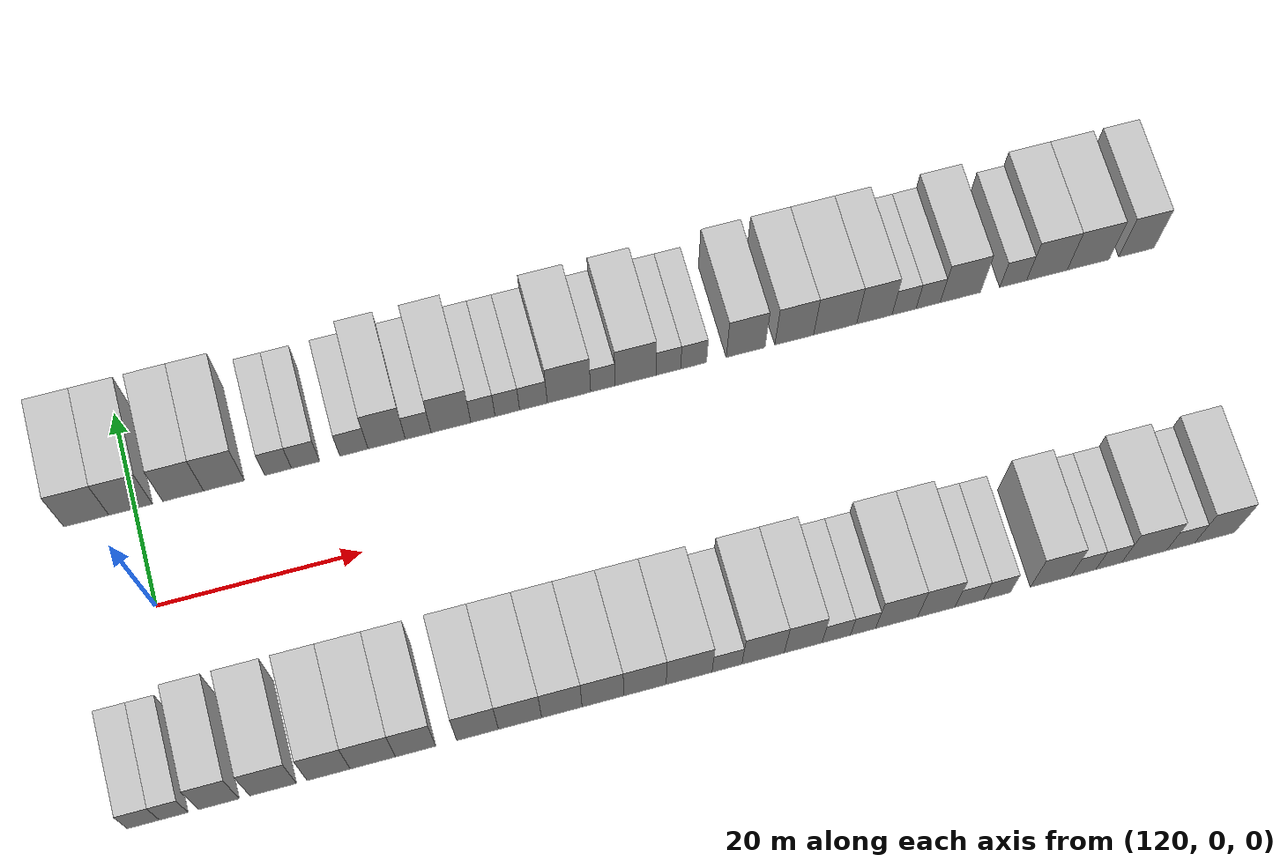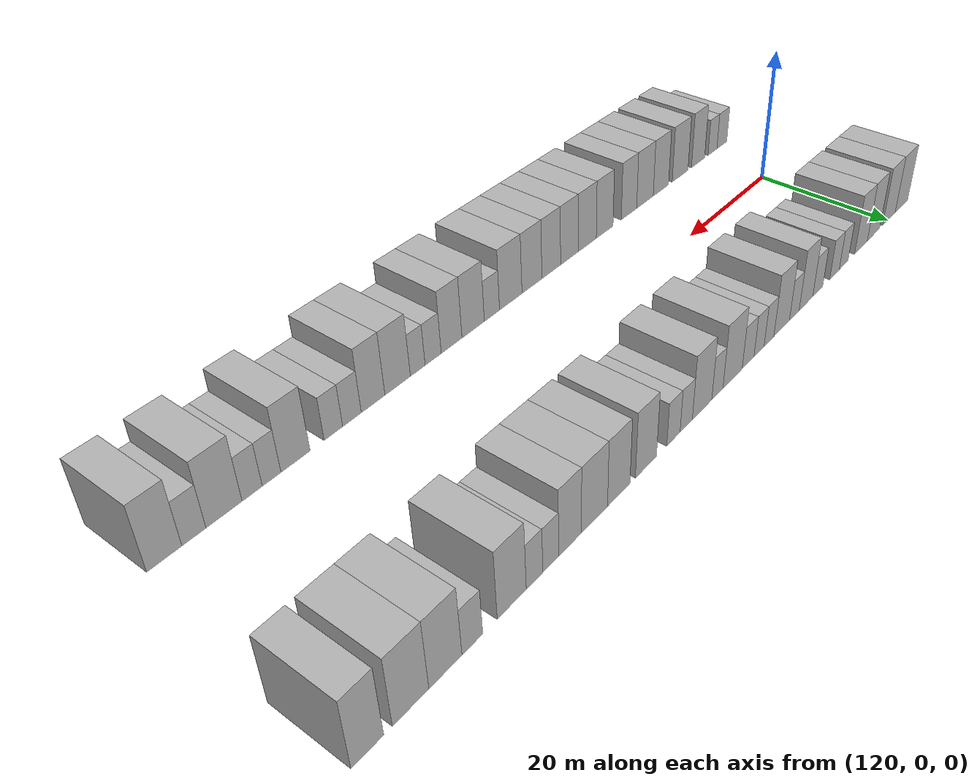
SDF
<sdf version="1.6">
 <world name="default">
  <model name="building_29">
   <static>1</static>
   <pose>115.2992 15.0000 0 0.000000 0.000000 1.570796</pose>
   <link name="link">
    <pose>0 0 4.50 0 0 0</pose>
    <collision name="collision"><geometry><box><size>10.0000 4.3955 9.0000</size></box></geometry></collision>
    <visual name="visual">
     <cast_shadows>0</cast_shadows>
     <geometry><box><size>10.0000 4.3955 9.0000</size></box></geometry>
     <material>
      <script>
       <uri>model://HANNAS_wall/materials/scripts</uri>
       <uri>model://HANNAS_wall/materials/textures</uri>
       <name>vrc/HANNAS_wall</name>
      </script>
     </material>
    </visual>
   </link>
  </model>
  <model name="building_30">
   <static>1</static>
   <pose>119.6165 15.0000 0 0.000000 0.000000 1.570796</pose>
   <link name="link">
    <pose>0 0 4.50 0 0 0</pose>
    <collision name="collision"><geometry><box><size>10.0000 4.2392 9.0000</size></box></geometry></collision>
    <visual name="visual">
     <cast_shadows>0</cast_shadows>
     <geometry><box><size>10.0000 4.2392 9.0000</size></box></geometry>
     <material>
      <script>
       <uri>model://HANNAS_wall/materials/scripts</uri>
       <uri>model://HANNAS_wall/materials/textures</uri>
       <name>vrc/HANNAS_wall</name>
      </script>
     </material>
    </visual>
   </link>
  </model>
  <model name="building_31">
   <static>1</static>
   <pose>124.7347 15.0000 0 0.000000 0.000000 1.570796</pose>
   <link name="link">
    <pose>0 0 4.50 0 0 0</pose>
    <collision name="collision"><geometry><box><size>10.0000 3.9970 9.0000</size></box></geometry></collision>
    <visual name="visual">
     <cast_shadows>0</cast_shadows>
     <geometry><box><size>10.0000 3.9970 9.0000</size></box></geometry>
     <material>
      <script>
       <uri>model://HANNAS_wall/materials/scripts</uri>
       <uri>model://HANNAS_wall/materials/textures</uri>
       <name>vrc/HANNAS_wall</name>
      </script>
     </material>
    </visual>
   </link>
  </model>
  <model name="building_32">
   <static>1</static>
   <pose>128.7281 15.0000 0 0.000000 0.000000 1.570796</pose>
   <link name="link">
    <pose>0 0 4.50 0 0 0</pose>
    <collision name="collision"><geometry><box><size>10.0000 3.9899 9.0000</size></box></geometry></collision>
    <visual name="visual">
     <cast_shadows>0</cast_shadows>
     <geometry><box><size>10.0000 3.9899 9.0000</size></box></geometry>
     <material>
      <script>
       <uri>model://HANNAS_wall/materials/scripts</uri>
       <uri>model://HANNAS_wall/materials/textures</uri>
       <name>vrc/HANNAS_wall</name>
      </script>
     </material>
    </visual>
   </link>
  </model>
  <model name="building_33">
   <static>1</static>
   <pose>134.0501 15.0000 0 0.000000 0.000000 1.570796</pose>
   <link name="link">
    <pose>0 0 3.00 0 0 0</pose>
    <collision name="collision"><geometry><box><size>10.0000 2.6541 6.0000</size></box></geometry></collision>
    <visual name="visual">
     <cast_shadows>0</cast_shadows>
     <geometry><box><size>10.0000 2.6541 6.0000</size></box></geometry>
     <material>
      <script>
       <uri>model://HANNAS_wall/materials/scripts</uri>
       <uri>model://HANNAS_wall/materials/textures</uri>
       <name>vrc/HANNAS_wall</name>
      </script>
     </material>
    </visual>
   </link>
  </model>
  <model name="building_34">
   <static>1</static>
   <pose>136.7619 15.0000 0 0.000000 0.000000 1.570796</pose>
   <link name="link">
    <pose>0 0 3.00 0 0 0</pose>
    <collision name="collision"><geometry><box><size>10.0000 2.7695 6.0000</size></box></geometry></collision>
    <visual name="visual">
     <cast_shadows>0</cast_shadows>
     <geometry><box><size>10.0000 2.7695 6.0000</size></box></geometry>
     <material>
      <script>
       <uri>model://HANNAS_wall/materials/scripts</uri>
       <uri>model://HANNAS_wall/materials/textures</uri>
       <name>vrc/HANNAS_wall</name>
      </script>
     </material>
    </visual>
   </link>
  </model>
  <model name="building_35">
   <static>1</static>
   <pose>141.5453 15.0000 0 0.000000 0.000000 1.570796</pose>
   <link name="link">
    <pose>0 0 3.00 0 0 0</pose>
    <collision name="collision"><geometry><box><size>10.0000 2.7974 6.0000</size></box></geometry></collision>
    <visual name="visual">
     <cast_shadows>0</cast_shadows>
     <geometry><box><size>10.0000 2.7974 6.0000</size></box></geometry>
     <material>
      <script>
       <uri>model://HANNAS_wall/materials/scripts</uri>
       <uri>model://HANNAS_wall/materials/textures</uri>
       <name>vrc/HANNAS_wall</name>
      </script>
     </material>
    </visual>
   </link>
  </model>
  <model name="building_36">
   <static>1</static>
   <pose>144.7961 15.0000 0 0.000000 0.000000 1.570796</pose>
   <link name="link">
    <pose>0 0 4.50 0 0 0</pose>
    <collision name="collision"><geometry><box><size>10.0000 3.7042 9.0000</size></box></geometry></collision>
    <visual name="visual">
     <cast_shadows>0</cast_shadows>
     <geometry><box><size>10.0000 3.7042 9.0000</size></box></geometry>
     <material>
      <script>
       <uri>model://HANNAS_wall/materials/scripts</uri>
       <uri>model://HANNAS_wall/materials/textures</uri>
       <name>vrc/HANNAS_wall</name>
      </script>
     </material>
    </visual>
   </link>
  </model>
  <model name="building_37">
   <static>1</static>
   <pose>147.9257 15.0000 0 0.000000 0.000000 1.570796</pose>
   <link name="link">
    <pose>0 0 3.00 0 0 0</pose>
    <collision name="collision"><geometry><box><size>10.0000 2.5549 6.0000</size></box></geometry></collision>
    <visual name="visual">
     <cast_shadows>0</cast_shadows>
     <geometry><box><size>10.0000 2.5549 6.0000</size></box></geometry>
     <material>
      <script>
       <uri>model://HANNAS_wall/materials/scripts</uri>
       <uri>model://HANNAS_wall/materials/textures</uri>
       <name>vrc/HANNAS_wall</name>
      </script>
     </material>
    </visual>
   </link>
  </model>
  <model name="building_38">
   <static>1</static>
   <pose>151.1870 15.0000 0 0.000000 0.000000 1.570796</pose>
   <link name="link">
    <pose>0 0 4.50 0 0 0</pose>
    <collision name="collision"><geometry><box><size>10.0000 3.9676 9.0000</size></box></geometry></collision>
    <visual name="visual">
     <cast_shadows>0</cast_shadows>
     <geometry><box><size>10.0000 3.9676 9.0000</size></box></geometry>
     <material>
      <script>
       <uri>model://HANNAS_wall/materials/scripts</uri>
       <uri>model://HANNAS_wall/materials/textures</uri>
       <name>vrc/HANNAS_wall</name>
      </script>
     </material>
    </visual>
   </link>
  </model>
  <model name="building_39">
   <static>1</static>
   <pose>154.3847 15.0000 0 0.000000 0.000000 1.570796</pose>
   <link name="link">
    <pose>0 0 3.00 0 0 0</pose>
    <collision name="collision"><geometry><box><size>10.0000 2.4278 6.0000</size></box></geometry></collision>
    <visual name="visual">
     <cast_shadows>0</cast_shadows>
     <geometry><box><size>10.0000 2.4278 6.0000</size></box></geometry>
     <material>
      <script>
       <uri>model://HANNAS_wall/materials/scripts</uri>
       <uri>model://HANNAS_wall/materials/textures</uri>
       <name>vrc/HANNAS_wall</name>
      </script>
     </material>
    </visual>
   </link>
  </model>
  <model name="building_40">
   <static>1</static>
   <pose>156.8276 15.0000 0 0.000000 0.000000 1.570796</pose>
   <link name="link">
    <pose>0 0 3.00 0 0 0</pose>
    <collision name="collision"><geometry><box><size>10.0000 2.4580 6.0000</size></box></geometry></collision>
    <visual name="visual">
     <cast_shadows>0</cast_shadows>
     <geometry><box><size>10.0000 2.4580 6.0000</size></box></geometry>
     <material>
      <script>
       <uri>model://HANNAS_wall/materials/scripts</uri>
       <uri>model://HANNAS_wall/materials/textures</uri>
       <name>vrc/HANNAS_wall</name>
      </script>
     </material>
    </visual>
   </link>
  </model>
  <model name="building_41">
   <static>1</static>
   <pose>159.4426 15.0000 0 0.000000 0.000000 1.570796</pose>
   <link name="link">
    <pose>0 0 3.00 0 0 0</pose>
    <collision name="collision"><geometry><box><size>10.0000 2.7721 6.0000</size></box></geometry></collision>
    <visual name="visual">
     <cast_shadows>0</cast_shadows>
     <geometry><box><size>10.0000 2.7721 6.0000</size></box></geometry>
     <material>
      <script>
       <uri>model://HANNAS_wall/materials/scripts</uri>
       <uri>model://HANNAS_wall/materials/textures</uri>
       <name>vrc/HANNAS_wall</name>
      </script>
     </material>
    </visual>
   </link>
  </model>
  <model name="building_42">
   <static>1</static>
   <pose>163.0122 15.0000 0 0.000000 0.000000 1.570796</pose>
   <link name="link">
    <pose>0 0 4.50 0 0 0</pose>
    <collision name="collision"><geometry><box><size>10.0000 4.3670 9.0000</size></box></geometry></collision>
    <visual name="visual">
     <cast_shadows>0</cast_shadows>
     <geometry><box><size>10.0000 4.3670 9.0000</size></box></geometry>
     <material>
      <script>
       <uri>model://HANNAS_wall/materials/scripts</uri>
       <uri>model://HANNAS_wall/materials/textures</uri>
       <name>vrc/HANNAS_wall</name>
      </script>
     </material>
    </visual>
   </link>
  </model>
  <model name="building_43">
   <static>1</static>
   <pose>166.4237 15.0000 0 0.000000 0.000000 1.570796</pose>
   <link name="link">
    <pose>0 0 3.00 0 0 0</pose>
    <collision name="collision"><geometry><box><size>10.0000 2.4562 6.0000</size></box></geometry></collision>
    <visual name="visual">
     <cast_shadows>0</cast_shadows>
     <geometry><box><size>10.0000 2.4562 6.0000</size></box></geometry>
     <material>
      <script>
       <uri>model://HANNAS_wall/materials/scripts</uri>
       <uri>model://HANNAS_wall/materials/textures</uri>
       <name>vrc/HANNAS_wall</name>
      </script>
     </material>
    </visual>
   </link>
  </model>
  <model name="building_44">
   <static>1</static>
   <pose>169.7165 15.0000 0 0.000000 0.000000 1.570796</pose>
   <link name="link">
    <pose>0 0 4.50 0 0 0</pose>
    <collision name="collision"><geometry><box><size>10.0000 4.1293 9.0000</size></box></geometry></collision>
    <visual name="visual">
     <cast_shadows>0</cast_shadows>
     <geometry><box><size>10.0000 4.1293 9.0000</size></box></geometry>
     <material>
      <script>
       <uri>model://HANNAS_wall/materials/scripts</uri>
       <uri>model://HANNAS_wall/materials/textures</uri>
       <name>vrc/HANNAS_wall</name>
      </script>
     </material>
    </visual>
   </link>
  </model>
  <model name="building_45">
   <static>1</static>
   <pose>173.0395 15.0000 0 0.000000 0.000000 1.570796</pose>
   <link name="link">
    <pose>0 0 3.00 0 0 0</pose>
    <collision name="collision"><geometry><box><size>10.0000 2.5167 6.0000</size></box></geometry></collision>
    <visual name="visual">
     <cast_shadows>0</cast_shadows>
     <geometry><box><size>10.0000 2.5167 6.0000</size></box></geometry>
     <material>
      <script>
       <uri>model://HANNAS_wall/materials/scripts</uri>
       <uri>model://HANNAS_wall/materials/textures</uri>
       <name>vrc/HANNAS_wall</name>
      </script>
     </material>
    </visual>
   </link>
  </model>
  <model name="building_46">
   <static>1</static>
   <pose>175.6132 15.0000 0 0.000000 0.000000 1.570796</pose>
   <link name="link">
    <pose>0 0 3.00 0 0 0</pose>
    <collision name="collision"><geometry><box><size>10.0000 2.6307 6.0000</size></box></geometry></collision>
    <visual name="visual">
     <cast_shadows>0</cast_shadows>
     <geometry><box><size>10.0000 2.6307 6.0000</size></box></geometry>
     <material>
      <script>
       <uri>model://HANNAS_wall/materials/scripts</uri>
       <uri>model://HANNAS_wall/materials/textures</uri>
       <name>vrc/HANNAS_wall</name>
      </script>
     </material>
    </visual>
   </link>
  </model>
  <model name="building_47">
   <static>1</static>
   <pose>180.9091 15.0000 0 0.000000 0.000000 1.570796</pose>
   <link name="link">
    <pose>0 0 4.50 0 0 0</pose>
    <collision name="collision"><geometry><box><size>10.0000 3.9610 9.0000</size></box></geometry></collision>
    <visual name="visual">
     <cast_shadows>0</cast_shadows>
     <geometry><box><size>10.0000 3.9610 9.0000</size></box></geometry>
     <material>
      <script>
       <uri>model://HANNAS_wall/materials/scripts</uri>
       <uri>model://HANNAS_wall/materials/textures</uri>
       <name>vrc/HANNAS_wall</name>
      </script>
     </material>
    </visual>
   </link>
  </model>
  <model name="building_48">
   <static>1</static>
   <pose>185.8766 15.0000 0 0.000000 0.000000 1.570796</pose>
   <link name="link">
    <pose>0 0 4.50 0 0 0</pose>
    <collision name="collision"><geometry><box><size>10.0000 3.9740 9.0000</size></box></geometry></collision>
    <visual name="visual">
     <cast_shadows>0</cast_shadows>
     <geometry><box><size>10.0000 3.9740 9.0000</size></box></geometry>
     <material>
      <script>
       <uri>model://HANNAS_wall/materials/scripts</uri>
       <uri>model://HANNAS_wall/materials/textures</uri>
       <name>vrc/HANNAS_wall</name>
      </script>
     </material>
    </visual>
   </link>
  </model>
  <model name="building_49">
   <static>1</static>
   <pose>190.0757 15.0000 0 0.000000 0.000000 1.570796</pose>
   <link name="link">
    <pose>0 0 4.50 0 0 0</pose>
    <collision name="collision"><geometry><box><size>10.0000 4.4241 9.0000</size></box></geometry></collision>
    <visual name="visual">
     <cast_shadows>0</cast_shadows>
     <geometry><box><size>10.0000 4.4241 9.0000</size></box></geometry>
     <material>
      <script>
       <uri>model://HANNAS_wall/materials/scripts</uri>
       <uri>model://HANNAS_wall/materials/textures</uri>
       <name>vrc/HANNAS_wall</name>
      </script>
     </material>
    </visual>
   </link>
  </model>
  <model name="building_50">
   <static>1</static>
   <pose>194.1069 15.0000 0 0.000000 0.000000 1.570796</pose>
   <link name="link">
    <pose>0 0 4.50 0 0 0</pose>
    <collision name="collision"><geometry><box><size>10.0000 3.6383 9.0000</size></box></geometry></collision>
    <visual name="visual">
     <cast_shadows>0</cast_shadows>
     <geometry><box><size>10.0000 3.6383 9.0000</size></box></geometry>
     <material>
      <script>
       <uri>model://HANNAS_wall/materials/scripts</uri>
       <uri>model://HANNAS_wall/materials/textures</uri>
       <name>vrc/HANNAS_wall</name>
      </script>
     </material>
    </visual>
   </link>
  </model>
  <model name="building_51">
   <static>1</static>
   <pose>197.1654 15.0000 0 0.000000 0.000000 1.570796</pose>
   <link name="link">
    <pose>0 0 3.00 0 0 0</pose>
    <collision name="collision"><geometry><box><size>10.0000 2.4788 6.0000</size></box></geometry></collision>
    <visual name="visual">
     <cast_shadows>0</cast_shadows>
     <geometry><box><size>10.0000 2.4788 6.0000</size></box></geometry>
     <material>
      <script>
       <uri>model://HANNAS_wall/materials/scripts</uri>
       <uri>model://HANNAS_wall/materials/textures</uri>
       <name>vrc/HANNAS_wall</name>
      </script>
     </material>
    </visual>
   </link>
  </model>
  <model name="building_52">
   <static>1</static>
   <pose>199.6519 15.0000 0 0.000000 0.000000 1.570796</pose>
   <link name="link">
    <pose>0 0 3.00 0 0 0</pose>
    <collision name="collision"><geometry><box><size>10.0000 2.4940 6.0000</size></box></geometry></collision>
    <visual name="visual">
     <cast_shadows>0</cast_shadows>
     <geometry><box><size>10.0000 2.4940 6.0000</size></box></geometry>
     <material>
      <script>
       <uri>model://HANNAS_wall/materials/scripts</uri>
       <uri>model://HANNAS_wall/materials/textures</uri>
       <name>vrc/HANNAS_wall</name>
      </script>
     </material>
    </visual>
   </link>
  </model>
  <model name="building_53">
   <static>1</static>
   <pose>202.9938 15.0000 0 0.000000 0.000000 1.570796</pose>
   <link name="link">
    <pose>0 0 4.50 0 0 0</pose>
    <collision name="collision"><geometry><box><size>10.0000 4.1898 9.0000</size></box></geometry></collision>
    <visual name="visual">
     <cast_shadows>0</cast_shadows>
     <geometry><box><size>10.0000 4.1898 9.0000</size></box></geometry>
     <material>
      <script>
       <uri>model://HANNAS_wall/materials/scripts</uri>
       <uri>model://HANNAS_wall/materials/textures</uri>
       <name>vrc/HANNAS_wall</name>
      </script>
     </material>
    </visual>
   </link>
  </model>
  <model name="building_54">
   <static>1</static>
   <pose>208.4833 15.0000 0 0.000000 0.000000 1.570796</pose>
   <link name="link">
    <pose>0 0 3.00 0 0 0</pose>
    <collision name="collision"><geometry><box><size>10.0000 2.7892 6.0000</size></box></geometry></collision>
    <visual name="visual">
     <cast_shadows>0</cast_shadows>
     <geometry><box><size>10.0000 2.7892 6.0000</size></box></geometry>
     <material>
      <script>
       <uri>model://HANNAS_wall/materials/scripts</uri>
       <uri>model://HANNAS_wall/materials/textures</uri>
       <name>vrc/HANNAS_wall</name>
      </script>
     </material>
    </visual>
   </link>
  </model>
  <model name="building_55">
   <static>1</static>
   <pose>212.0010 15.0000 0 0.000000 0.000000 1.570796</pose>
   <link name="link">
    <pose>0 0 4.50 0 0 0</pose>
    <collision name="collision"><geometry><box><size>10.0000 4.2462 9.0000</size></box></geometry></collision>
    <visual name="visual">
     <cast_shadows>0</cast_shadows>
     <geometry><box><size>10.0000 4.2462 9.0000</size></box></geometry>
     <material>
      <script>
       <uri>model://HANNAS_wall/materials/scripts</uri>
       <uri>model://HANNAS_wall/materials/textures</uri>
       <name>vrc/HANNAS_wall</name>
      </script>
     </material>
    </visual>
   </link>
  </model>
  <model name="building_56">
   <static>1</static>
   <pose>216.3289 15.0000 0 0.000000 0.000000 1.570796</pose>
   <link name="link">
    <pose>0 0 4.50 0 0 0</pose>
    <collision name="collision"><geometry><box><size>10.0000 4.4097 9.0000</size></box></geometry></collision>
    <visual name="visual">
     <cast_shadows>0</cast_shadows>
     <geometry><box><size>10.0000 4.4097 9.0000</size></box></geometry>
     <material>
      <script>
       <uri>model://HANNAS_wall/materials/scripts</uri>
       <uri>model://HANNAS_wall/materials/textures</uri>
       <name>vrc/HANNAS_wall</name>
      </script>
     </material>
    </visual>
   </link>
  </model>
  <model name="building_57">
   <static>1</static>
   <pose>221.3847 15.0000 0 0.000000 0.000000 1.570796</pose>
   <link name="link">
    <pose>0 0 4.50 0 0 0</pose>
    <collision name="collision"><geometry><box><size>10.0000 3.7019 9.0000</size></box></geometry></collision>
    <visual name="visual">
     <cast_shadows>0</cast_shadows>
     <geometry><box><size>10.0000 3.7019 9.0000</size></box></geometry>
     <material>
      <script>
       <uri>model://HANNAS_wall/materials/scripts</uri>
       <uri>model://HANNAS_wall/materials/textures</uri>
       <name>vrc/HANNAS_wall</name>
      </script>
     </material>
    </visual>
   </link>
  </model>
  <model name="building_86">
   <static>1</static>
   <pose>114.8021 -15.0000 0 0.000000 0.000000 1.570796</pose>
   <link name="link">
    <pose>0 0 3.00 0 0 0</pose>
    <collision name="collision"><geometry><box><size>10.0000 2.9981 6.0000</size></box></geometry></collision>
    <visual name="visual">
     <cast_shadows>0</cast_shadows>
     <geometry><box><size>10.0000 2.9981 6.0000</size></box></geometry>
     <material>
      <script>
       <uri>model://HANNAS_wall/materials/scripts</uri>
       <uri>model://HANNAS_wall/materials/textures</uri>
       <name>vrc/HANNAS_wall</name>
      </script>
     </material>
    </visual>
   </link>
  </model>
  <model name="building_87">
   <static>1</static>
   <pose>117.6377 -15.0000 0 0.000000 0.000000 1.570796</pose>
   <link name="link">
    <pose>0 0 3.00 0 0 0</pose>
    <collision name="collision"><geometry><box><size>10.0000 2.6730 6.0000</size></box></geometry></collision>
    <visual name="visual">
     <cast_shadows>0</cast_shadows>
     <geometry><box><size>10.0000 2.6730 6.0000</size></box></geometry>
     <material>
      <script>
       <uri>model://HANNAS_wall/materials/scripts</uri>
       <uri>model://HANNAS_wall/materials/textures</uri>
       <name>vrc/HANNAS_wall</name>
      </script>
     </material>
    </visual>
   </link>
  </model>
  <model name="building_88">
   <static>1</static>
   <pose>121.8744 -15.0000 0 0.000000 0.000000 1.570796</pose>
   <link name="link">
    <pose>0 0 4.50 0 0 0</pose>
    <collision name="collision"><geometry><box><size>10.0000 3.8004 9.0000</size></box></geometry></collision>
    <visual name="visual">
     <cast_shadows>0</cast_shadows>
     <geometry><box><size>10.0000 3.8004 9.0000</size></box></geometry>
     <material>
      <script>
       <uri>model://HANNAS_wall/materials/scripts</uri>
       <uri>model://HANNAS_wall/materials/textures</uri>
       <name>vrc/HANNAS_wall</name>
      </script>
     </material>
    </visual>
   </link>
  </model>
  <model name="building_89">
   <static>1</static>
   <pose>126.9673 -15.0000 0 0.000000 0.000000 1.570796</pose>
   <link name="link">
    <pose>0 0 4.50 0 0 0</pose>
    <collision name="collision"><geometry><box><size>10.0000 4.3854 9.0000</size></box></geometry></collision>
    <visual name="visual">
     <cast_shadows>0</cast_shadows>
     <geometry><box><size>10.0000 4.3854 9.0000</size></box></geometry>
     <material>
      <script>
       <uri>model://HANNAS_wall/materials/scripts</uri>
       <uri>model://HANNAS_wall/materials/textures</uri>
       <name>vrc/HANNAS_wall</name>
      </script>
     </material>
    </visual>
   </link>
  </model>
  <model name="building_90">
   <static>1</static>
   <pose>132.2022 -15.0000 0 0.000000 0.000000 1.570796</pose>
   <link name="link">
    <pose>0 0 4.50 0 0 0</pose>
    <collision name="collision"><geometry><box><size>10.0000 4.0846 9.0000</size></box></geometry></collision>
    <visual name="visual">
     <cast_shadows>0</cast_shadows>
     <geometry><box><size>10.0000 4.0846 9.0000</size></box></geometry>
     <material>
      <script>
       <uri>model://HANNAS_wall/materials/scripts</uri>
       <uri>model://HANNAS_wall/materials/textures</uri>
       <name>vrc/HANNAS_wall</name>
      </script>
     </material>
    </visual>
   </link>
  </model>
  <model name="building_91">
   <static>1</static>
   <pose>136.3926 -15.0000 0 0.000000 0.000000 1.570796</pose>
   <link name="link">
    <pose>0 0 4.50 0 0 0</pose>
    <collision name="collision"><geometry><box><size>10.0000 4.2962 9.0000</size></box></geometry></collision>
    <visual name="visual">
     <cast_shadows>0</cast_shadows>
     <geometry><box><size>10.0000 4.2962 9.0000</size></box></geometry>
     <material>
      <script>
       <uri>model://HANNAS_wall/materials/scripts</uri>
       <uri>model://HANNAS_wall/materials/textures</uri>
       <name>vrc/HANNAS_wall</name>
      </script>
     </material>
    </visual>
   </link>
  </model>
  <model name="building_92">
   <static>1</static>
   <pose>140.4512 -15.0000 0 0.000000 0.000000 1.570796</pose>
   <link name="link">
    <pose>0 0 4.50 0 0 0</pose>
    <collision name="collision"><geometry><box><size>10.0000 3.8211 9.0000</size></box></geometry></collision>
    <visual name="visual">
     <cast_shadows>0</cast_shadows>
     <geometry><box><size>10.0000 3.8211 9.0000</size></box></geometry>
     <material>
      <script>
       <uri>model://HANNAS_wall/materials/scripts</uri>
       <uri>model://HANNAS_wall/materials/textures</uri>
       <name>vrc/HANNAS_wall</name>
      </script>
     </material>
    </visual>
   </link>
  </model>
  <model name="building_93">
   <static>1</static>
   <pose>146.3554 -15.0000 0 0.000000 0.000000 1.570796</pose>
   <link name="link">
    <pose>0 0 4.50 0 0 0</pose>
    <collision name="collision"><geometry><box><size>10.0000 3.9873 9.0000</size></box></geometry></collision>
    <visual name="visual">
     <cast_shadows>0</cast_shadows>
     <geometry><box><size>10.0000 3.9873 9.0000</size></box></geometry>
     <material>
      <script>
       <uri>model://HANNAS_wall/materials/scripts</uri>
       <uri>model://HANNAS_wall/materials/textures</uri>
       <name>vrc/HANNAS_wall</name>
      </script>
     </material>
    </visual>
   </link>
  </model>
  <model name="building_94">
   <static>1</static>
   <pose>150.4192 -15.0000 0 0.000000 0.000000 1.570796</pose>
   <link name="link">
    <pose>0 0 4.50 0 0 0</pose>
    <collision name="collision"><geometry><box><size>10.0000 4.1402 9.0000</size></box></geometry></collision>
    <visual name="visual">
     <cast_shadows>0</cast_shadows>
     <geometry><box><size>10.0000 4.1402 9.0000</size></box></geometry>
     <material>
      <script>
       <uri>model://HANNAS_wall/materials/scripts</uri>
       <uri>model://HANNAS_wall/materials/textures</uri>
       <name>vrc/HANNAS_wall</name>
      </script>
     </material>
    </visual>
   </link>
  </model>
  <model name="building_95">
   <static>1</static>
   <pose>154.4359 -15.0000 0 0.000000 0.000000 1.570796</pose>
   <link name="link">
    <pose>0 0 4.50 0 0 0</pose>
    <collision name="collision"><geometry><box><size>10.0000 3.8934 9.0000</size></box></geometry></collision>
    <visual name="visual">
     <cast_shadows>0</cast_shadows>
     <geometry><box><size>10.0000 3.8934 9.0000</size></box></geometry>
     <material>
      <script>
       <uri>model://HANNAS_wall/materials/scripts</uri>
       <uri>model://HANNAS_wall/materials/textures</uri>
       <name>vrc/HANNAS_wall</name>
      </script>
     </material>
    </visual>
   </link>
  </model>
  <model name="building_96">
   <static>1</static>
   <pose>158.3820 -15.0000 0 0.000000 0.000000 1.570796</pose>
   <link name="link">
    <pose>0 0 4.50 0 0 0</pose>
    <collision name="collision"><geometry><box><size>10.0000 3.9987 9.0000</size></box></geometry></collision>
    <visual name="visual">
     <cast_shadows>0</cast_shadows>
     <geometry><box><size>10.0000 3.9987 9.0000</size></box></geometry>
     <material>
      <script>
       <uri>model://HANNAS_wall/materials/scripts</uri>
       <uri>model://HANNAS_wall/materials/textures</uri>
       <name>vrc/HANNAS_wall</name>
      </script>
     </material>
    </visual>
   </link>
  </model>
  <model name="building_97">
   <static>1</static>
   <pose>162.4344 -15.0000 0 0.000000 0.000000 1.570796</pose>
   <link name="link">
    <pose>0 0 4.50 0 0 0</pose>
    <collision name="collision"><geometry><box><size>10.0000 4.1061 9.0000</size></box></geometry></collision>
    <visual name="visual">
     <cast_shadows>0</cast_shadows>
     <geometry><box><size>10.0000 4.1061 9.0000</size></box></geometry>
     <material>
      <script>
       <uri>model://HANNAS_wall/materials/scripts</uri>
       <uri>model://HANNAS_wall/materials/textures</uri>
       <name>vrc/HANNAS_wall</name>
      </script>
     </material>
    </visual>
   </link>
  </model>
  <model name="building_98">
   <static>1</static>
   <pose>166.7149 -15.0000 0 0.000000 0.000000 1.570796</pose>
   <link name="link">
    <pose>0 0 4.50 0 0 0</pose>
    <collision name="collision"><geometry><box><size>10.0000 4.4549 9.0000</size></box></geometry></collision>
    <visual name="visual">
     <cast_shadows>0</cast_shadows>
     <geometry><box><size>10.0000 4.4549 9.0000</size></box></geometry>
     <material>
      <script>
       <uri>model://HANNAS_wall/materials/scripts</uri>
       <uri>model://HANNAS_wall/materials/textures</uri>
       <name>vrc/HANNAS_wall</name>
      </script>
     </material>
    </visual>
   </link>
  </model>
  <model name="building_99">
   <static>1</static>
   <pose>170.3978 -15.0000 0 0.000000 0.000000 1.570796</pose>
   <link name="link">
    <pose>0 0 3.00 0 0 0</pose>
    <collision name="collision"><geometry><box><size>10.0000 2.9109 6.0000</size></box></geometry></collision>
    <visual name="visual">
     <cast_shadows>0</cast_shadows>
     <geometry><box><size>10.0000 2.9109 6.0000</size></box></geometry>
     <material>
      <script>
       <uri>model://HANNAS_wall/materials/scripts</uri>
       <uri>model://HANNAS_wall/materials/textures</uri>
       <name>vrc/HANNAS_wall</name>
      </script>
     </material>
    </visual>
   </link>
  </model>
  <model name="building_100">
   <static>1</static>
   <pose>173.9233 -15.0000 0 0.000000 0.000000 1.570796</pose>
   <link name="link">
    <pose>0 0 4.50 0 0 0</pose>
    <collision name="collision"><geometry><box><size>10.0000 4.1402 9.0000</size></box></geometry></collision>
    <visual name="visual">
     <cast_shadows>0</cast_shadows>
     <geometry><box><size>10.0000 4.1402 9.0000</size></box></geometry>
     <material>
      <script>
       <uri>model://HANNAS_wall/materials/scripts</uri>
       <uri>model://HANNAS_wall/materials/textures</uri>
       <name>vrc/HANNAS_wall</name>
      </script>
     </material>
    </visual>
   </link>
  </model>
  <model name="building_101">
   <static>1</static>
   <pose>177.8419 -15.0000 0 0.000000 0.000000 1.570796</pose>
   <link name="link">
    <pose>0 0 4.50 0 0 0</pose>
    <collision name="collision"><geometry><box><size>10.0000 3.6970 9.0000</size></box></geometry></collision>
    <visual name="visual">
     <cast_shadows>0</cast_shadows>
     <geometry><box><size>10.0000 3.6970 9.0000</size></box></geometry>
     <material>
      <script>
       <uri>model://HANNAS_wall/materials/scripts</uri>
       <uri>model://HANNAS_wall/materials/textures</uri>
       <name>vrc/HANNAS_wall</name>
      </script>
     </material>
    </visual>
   </link>
  </model>
  <model name="building_102">
   <static>1</static>
   <pose>181.0839 -15.0000 0 0.000000 0.000000 1.570796</pose>
   <link name="link">
    <pose>0 0 3.00 0 0 0</pose>
    <collision name="collision"><geometry><box><size>10.0000 2.7870 6.0000</size></box></geometry></collision>
    <visual name="visual">
     <cast_shadows>0</cast_shadows>
     <geometry><box><size>10.0000 2.7870 6.0000</size></box></geometry>
     <material>
      <script>
       <uri>model://HANNAS_wall/materials/scripts</uri>
       <uri>model://HANNAS_wall/materials/textures</uri>
       <name>vrc/HANNAS_wall</name>
      </script>
     </material>
    </visual>
   </link>
  </model>
  <model name="building_103">
   <static>1</static>
   <pose>183.7151 -15.0000 0 0.000000 0.000000 1.570796</pose>
   <link name="link">
    <pose>0 0 3.00 0 0 0</pose>
    <collision name="collision"><geometry><box><size>10.0000 2.4754 6.0000</size></box></geometry></collision>
    <visual name="visual">
     <cast_shadows>0</cast_shadows>
     <geometry><box><size>10.0000 2.4754 6.0000</size></box></geometry>
     <material>
      <script>
       <uri>model://HANNAS_wall/materials/scripts</uri>
       <uri>model://HANNAS_wall/materials/textures</uri>
       <name>vrc/HANNAS_wall</name>
      </script>
     </material>
    </visual>
   </link>
  </model>
  <model name="building_104">
   <static>1</static>
   <pose>187.0239 -15.0000 0 0.000000 0.000000 1.570796</pose>
   <link name="link">
    <pose>0 0 4.50 0 0 0</pose>
    <collision name="collision"><geometry><box><size>10.0000 4.1422 9.0000</size></box></geometry></collision>
    <visual name="visual">
     <cast_shadows>0</cast_shadows>
     <geometry><box><size>10.0000 4.1422 9.0000</size></box></geometry>
     <material>
      <script>
       <uri>model://HANNAS_wall/materials/scripts</uri>
       <uri>model://HANNAS_wall/materials/textures</uri>
       <name>vrc/HANNAS_wall</name>
      </script>
     </material>
    </visual>
   </link>
  </model>
  <model name="building_105">
   <static>1</static>
   <pose>190.9406 -15.0000 0 0.000000 0.000000 1.570796</pose>
   <link name="link">
    <pose>0 0 4.50 0 0 0</pose>
    <collision name="collision"><geometry><box><size>10.0000 3.6913 9.0000</size></box></geometry></collision>
    <visual name="visual">
     <cast_shadows>0</cast_shadows>
     <geometry><box><size>10.0000 3.6913 9.0000</size></box></geometry>
     <material>
      <script>
       <uri>model://HANNAS_wall/materials/scripts</uri>
       <uri>model://HANNAS_wall/materials/textures</uri>
       <name>vrc/HANNAS_wall</name>
      </script>
     </material>
    </visual>
   </link>
  </model>
  <model name="building_106">
   <static>1</static>
   <pose>194.1928 -15.0000 0 0.000000 0.000000 1.570796</pose>
   <link name="link">
    <pose>0 0 3.00 0 0 0</pose>
    <collision name="collision"><geometry><box><size>10.0000 2.8129 6.0000</size></box></geometry></collision>
    <visual name="visual">
     <cast_shadows>0</cast_shadows>
     <geometry><box><size>10.0000 2.8129 6.0000</size></box></geometry>
     <material>
      <script>
       <uri>model://HANNAS_wall/materials/scripts</uri>
       <uri>model://HANNAS_wall/materials/textures</uri>
       <name>vrc/HANNAS_wall</name>
      </script>
     </material>
    </visual>
   </link>
  </model>
  <model name="building_107">
   <static>1</static>
   <pose>196.9590 -15.0000 0 0.000000 0.000000 1.570796</pose>
   <link name="link">
    <pose>0 0 3.00 0 0 0</pose>
    <collision name="collision"><geometry><box><size>10.0000 2.7196 6.0000</size></box></geometry></collision>
    <visual name="visual">
     <cast_shadows>0</cast_shadows>
     <geometry><box><size>10.0000 2.7196 6.0000</size></box></geometry>
     <material>
      <script>
       <uri>model://HANNAS_wall/materials/scripts</uri>
       <uri>model://HANNAS_wall/materials/textures</uri>
       <name>vrc/HANNAS_wall</name>
      </script>
     </material>
    </visual>
   </link>
  </model>
  <model name="building_108">
   <static>1</static>
   <pose>202.3341 -15.0000 0 0.000000 0.000000 1.570796</pose>
   <link name="link">
    <pose>0 0 4.50 0 0 0</pose>
    <collision name="collision"><geometry><box><size>10.0000 4.0306 9.0000</size></box></geometry></collision>
    <visual name="visual">
     <cast_shadows>0</cast_shadows>
     <geometry><box><size>10.0000 4.0306 9.0000</size></box></geometry>
     <material>
      <script>
       <uri>model://HANNAS_wall/materials/scripts</uri>
       <uri>model://HANNAS_wall/materials/textures</uri>
       <name>vrc/HANNAS_wall</name>
      </script>
     </material>
    </visual>
   </link>
  </model>
  <model name="building_109">
   <static>1</static>
   <pose>205.5930 -15.0000 0 0.000000 0.000000 1.570796</pose>
   <link name="link">
    <pose>0 0 3.00 0 0 0</pose>
    <collision name="collision"><geometry><box><size>10.0000 2.4871 6.0000</size></box></geometry></collision>
    <visual name="visual">
     <cast_shadows>0</cast_shadows>
     <geometry><box><size>10.0000 2.4871 6.0000</size></box></geometry>
     <material>
      <script>
       <uri>model://HANNAS_wall/materials/scripts</uri>
       <uri>model://HANNAS_wall/materials/textures</uri>
       <name>vrc/HANNAS_wall</name>
      </script>
     </material>
    </visual>
   </link>
  </model>
  <model name="building_110">
   <static>1</static>
   <pose>208.1387 -15.0000 0 0.000000 0.000000 1.570796</pose>
   <link name="link">
    <pose>0 0 3.00 0 0 0</pose>
    <collision name="collision"><geometry><box><size>10.0000 2.6045 6.0000</size></box></geometry></collision>
    <visual name="visual">
     <cast_shadows>0</cast_shadows>
     <geometry><box><size>10.0000 2.6045 6.0000</size></box></geometry>
     <material>
      <script>
       <uri>model://HANNAS_wall/materials/scripts</uri>
       <uri>model://HANNAS_wall/materials/textures</uri>
       <name>vrc/HANNAS_wall</name>
      </script>
     </material>
    </visual>
   </link>
  </model>
  <model name="building_111">
   <static>1</static>
   <pose>211.6876 -15.0000 0 0.000000 0.000000 1.570796</pose>
   <link name="link">
    <pose>0 0 4.50 0 0 0</pose>
    <collision name="collision"><geometry><box><size>10.0000 4.4932 9.0000</size></box></geometry></collision>
    <visual name="visual">
     <cast_shadows>0</cast_shadows>
     <geometry><box><size>10.0000 4.4932 9.0000</size></box></geometry>
     <material>
      <script>
       <uri>model://HANNAS_wall/materials/scripts</uri>
       <uri>model://HANNAS_wall/materials/textures</uri>
       <name>vrc/HANNAS_wall</name>
      </script>
     </material>
    </visual>
   </link>
  </model>
  <model name="building_112">
   <static>1</static>
   <pose>215.3622 -15.0000 0 0.000000 0.000000 1.570796</pose>
   <link name="link">
    <pose>0 0 3.00 0 0 0</pose>
    <collision name="collision"><geometry><box><size>10.0000 2.8561 6.0000</size></box></geometry></collision>
    <visual name="visual">
     <cast_shadows>0</cast_shadows>
     <geometry><box><size>10.0000 2.8561 6.0000</size></box></geometry>
     <material>
      <script>
       <uri>model://HANNAS_wall/materials/scripts</uri>
       <uri>model://HANNAS_wall/materials/textures</uri>
       <name>vrc/HANNAS_wall</name>
      </script>
     </material>
    </visual>
   </link>
  </model>
  <model name="building_113">
   <static>1</static>
   <pose>218.8065 -15.0000 0 0.000000 0.000000 1.570796</pose>
   <link name="link">
    <pose>0 0 4.50 0 0 0</pose>
    <collision name="collision"><geometry><box><size>10.0000 4.0326 9.0000</size></box></geometry></collision>
    <visual name="visual">
     <cast_shadows>0</cast_shadows>
     <geometry><box><size>10.0000 4.0326 9.0000</size></box></geometry>
     <material>
      <script>
       <uri>model://HANNAS_wall/materials/scripts</uri>
       <uri>model://HANNAS_wall/materials/textures</uri>
       <name>vrc/HANNAS_wall</name>
      </script>
     </material>
    </visual>
   </link>
  </model>
 </world>
</sdf>
